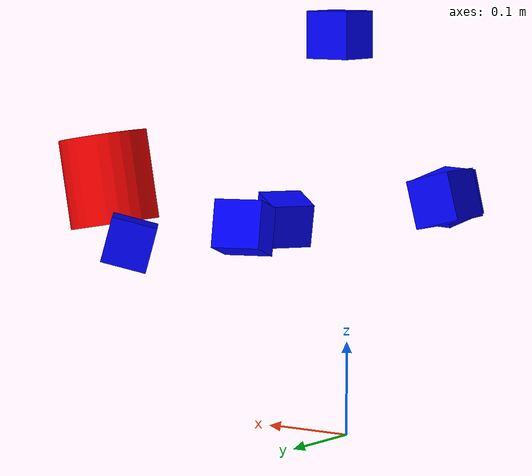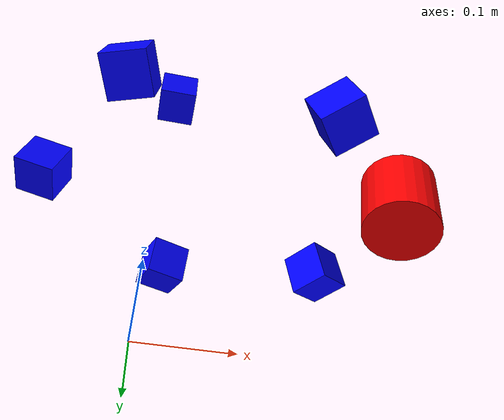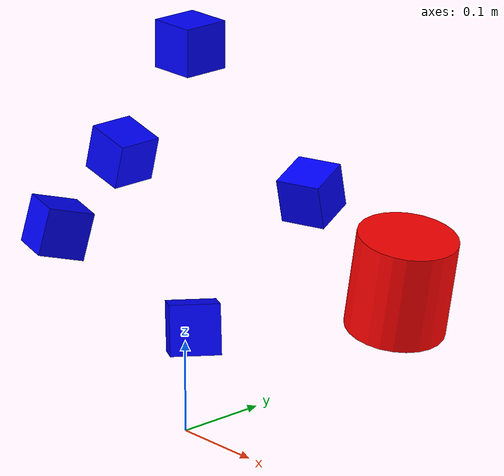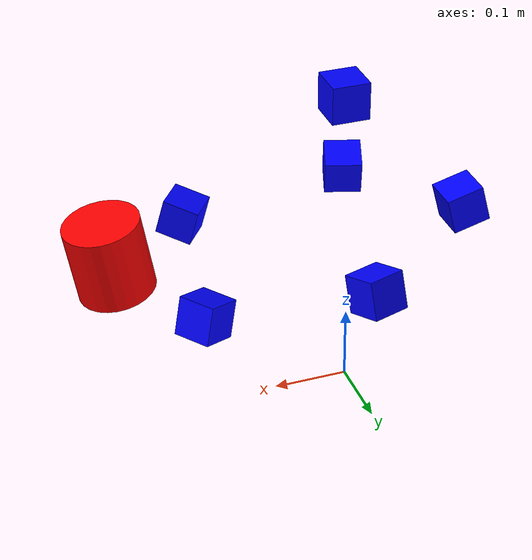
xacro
<?xml version='1.0'?>
<robot name="vision_rig" xmlns:xacro="http://www.ros.org/wiki/xacro">

   <xacro:property name="M_PI" value="3.1415926535897931"/>
   <xacro:property name="length_cam" value="0.05" />

   <link name="base_link" />
   <!--link name="origin_link" /-->

   <link name="lidar_link">
    <visual>
     <geometry>
      <cylinder radius="0.05" length="0.1" />
     </geometry>
     <material name="red">
      <color rgba="1 0 0 0"/>
     </material>
    </visual>
   </link>

   <link name="camera0_link">
    <visual>
     <geometry>
      <box size="${length_cam} ${length_cam} ${length_cam}" />
     </geometry>
     <material name="blue">
      <color rgba="0 0 1 0"/>
     </material>
    </visual>
   </link>

   <link name="camera1_link">
    <visual>
     <geometry>
      <box size="${length_cam} ${length_cam} ${length_cam}" />
     </geometry>
     <material name="blue">
      <color rgba="0 0 1 0"/>
     </material>
    </visual>
   </link>

   <link name="camera2_link">
    <visual>
     <geometry>
      <box size="${length_cam} ${length_cam} ${length_cam}" />
     </geometry>
     <material name="blue">
      <color rgba="0 0 1 0"/>
     </material>
    </visual>
   </link>

   <link name="camera3_link">
    <visual>
     <geometry>
      <box size="${length_cam} ${length_cam} ${length_cam}" />
     </geometry>
     <material name="blue">
      <color rgba="0 0 1 0"/>
     </material>
    </visual>
   </link>

   <link name="camera4_link">
    <visual>
     <geometry>
      <box size="${length_cam} ${length_cam} ${length_cam}" />
     </geometry>
     <material name="blue">
      <color rgba="0 0 1 0"/>
     </material>
    </visual>
   </link>

   <link name="camera5_link">
    <visual>
     <geometry>
      <box size="${length_cam} ${length_cam} ${length_cam}" />
     </geometry>
     <material name="blue">
      <color rgba="0 0 1 0"/>
     </material>
    </visual>
   </link>

   <joint name="joint_base_lidar" type="fixed">
    <parent link="base_link" />
    <child link="lidar_link" />
    <!--origin xyz="0.22114 0 0.41304" rpy="0 ${-10*M_PI/180} ${M_PI}" /--> <!--Simon-Pierre's values (Husky)-->
    <origin xyz="0.31934 0 0.25611" rpy="0 ${-10*M_PI/180} ${M_PI}"/> <!--Dominic's values (Marmotte)-->
   </joint>

   <joint name="joint_lidar_camera0" type="fixed">
    <parent link="lidar_link" />
    <child link="camera0_link" />
    <!--origin xyz="0.15809 0.12394 -0.08268" rpy="-1.167301 0.102245 0.949740" /--> <!--Before origin changed-->
    <origin xyz="0.12759 0.1461 -0.07258" rpy="-1.167301 0.102245 0.949740" /> <!-- After origin changed-->
   </joint>

   <joint name="joint_lidar_camera1" type="fixed">
    <parent link="lidar_link" />
    <child link="camera1_link" />
    <!--origin xyz="0.34382 0.09629 -0.08268" rpy="-1.3634311444 0.165909317 -0.318686332" /--> <!--Before origin changed-->
    <origin xyz="0.35547 0.13215 -0.07258" rpy="-1.3634311444 0.165909317 -0.318686332" /> <!--After origin changed-->
   </joint>

   <joint name="joint_lidar_camera2" type="fixed">
    <parent link="lidar_link" />
    <child link="camera2_link" />
    <!--origin xyz="0.41006 -0.03625 -0.08268" rpy="-1.48352986 0 -1.57079632" /--> <!--Before origin changed-->
    <origin xyz="0.45576 -0.03625 -0.07258" rpy="-1.48352986 0 -1.57079632" /> <!--After origin changed-->
   </joint>

   <joint name="joint_lidar_camera3" type="fixed">
    <parent link="lidar_link" />
    <child link="camera3_link" />
    <!--origin xyz="0.27487 -0.11869 -0.08268" rpy="-1.3634311444 -0.165909317 -2.82290632" /--> <!--Before origin changed-->
    <origin xyz="0.28652 -0.15455 -0.07258" rpy="-1.3634311444 -0.165909317 -2.82290632" /> <!--After origin changed-->
   </joint>

   <joint name="joint_lidar_camera4" type="fixed">
    <parent link="lidar_link" />
    <child link="camera4_link" />
    <!--origin xyz="0.11548 -0.06528 -0.08268" rpy="-1.167301 -0.102245 2.19185" /--> <!--Before origin changed-->
    <origin xyz="0.08497 -0.08744 -0.07258" rpy="-1.167301 -0.102245 2.19185" /> <!--After origin changed-->
   </joint>

   <joint name="joint_lidar_camera5" type="fixed">
    <parent link="lidar_link" />
    <child link="camera5_link" />
    <!--origin xyz="0.33903 0 0.05769" rpy="0.1745329 0 1.57079632" /--> <!--Before origin changed-->
    <origin xyz="0.33403 0 0.11308" rpy="0.1745329 0 1.57079632" /> <!--After origin changed-->
   </joint>
</robot>
